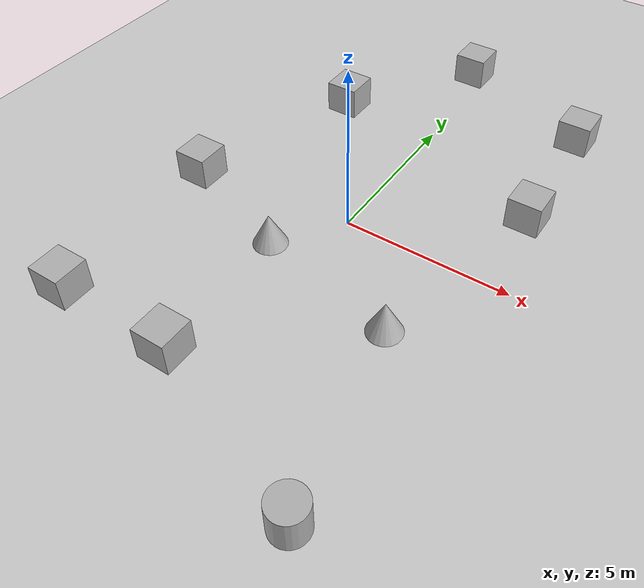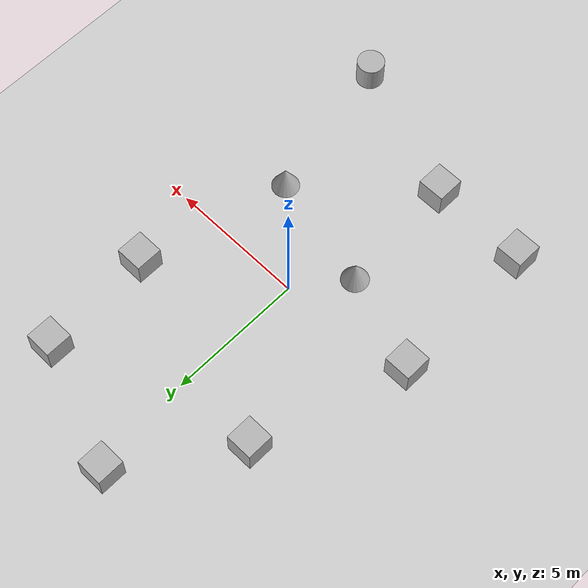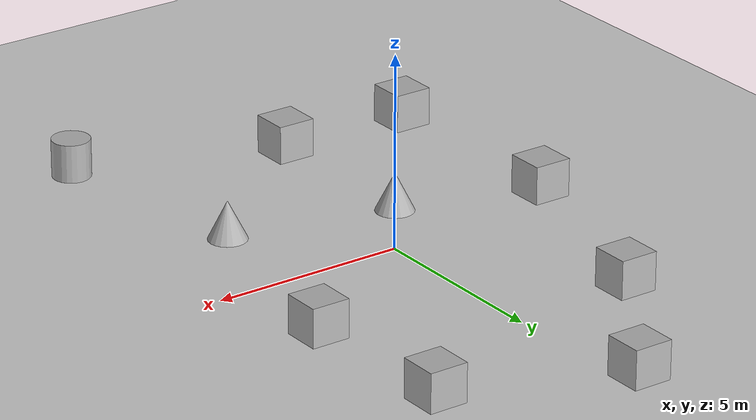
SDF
<sdf version="1.10">
 <world name="empty_warehouse">
  <scene>
   <grid>false</grid>
   <ambient>0.400000006 0.400000006 0.400000006 1</ambient>
   <background>0.699999988 0.699999988 0.699999988 1</background>
   <shadows>true</shadows>
  </scene>
  <physics name="1ms" type="ignored">
   <max_step_size>0.002</max_step_size>
   <real_time_factor>1</real_time_factor>
   <real_time_update_rate>1000</real_time_update_rate>
  </physics>
  <plugin name="ignition::gazebo::systems::Physics" filename="ignition-gazebo-physics-system"/>
  <plugin name="ignition::gazebo::systems::UserCommands" filename="ignition-gazebo-user-commands-system"/>
  <plugin name="ignition::gazebo::systems::SceneBroadcaster" filename="ignition-gazebo-scene-broadcaster-system"/>
  <gravity>0 0 -9.8000000000000007</gravity>
  <magnetic_field>5.5644999999999998e-06 2.2875799999999999e-05 -4.2388400000000002e-05</magnetic_field>
  <atmosphere type="adiabatic"/>
  <model name="ground_plane">
   <static>true</static>
   <link name="link">
    <collision name="collision">
     <geometry><plane><normal>0 0 1</normal><size>100 100</size></plane></geometry>
    </collision>
    <visual name="visual">
     <geometry><plane><normal>0 0 1</normal><size>100 100</size></plane></geometry>
     <material>
      <ambient>0.800000012 0.800000012 0.800000012 1</ambient>
      <diffuse>0.800000012 0.800000012 0.800000012 1</diffuse>
      <specular>0.800000012 0.800000012 0.800000012 1</specular>
     </material>
    </visual>
    <inertial>
     <mass>1</mass>
     <inertia><ixx>1</ixx><ixy>0</ixy><ixz>0</ixz><iyy>1</iyy><iyz>0</iyz><izz>1</izz></inertia>
    </inertial>
   </link>
  </model>
  <model name="box">
   <pose>-0.41791252507652388 8.7567817257969658 0.5 0 0 0</pose>
   <link name="box_link">
    <inertial>
     <inertia><ixx>0.16666</ixx><ixy>0</ixy><ixz>0</ixz><iyy>0.16666</iyy><iyz>0</iyz><izz>0.16666</izz></inertia>
     <mass>1</mass>
    </inertial>
    <collision name="box_collision"><geometry><box><size>1 1 1</size></box></geometry></collision>
    <visual name="box_visual">
     <geometry><box><size>1 1 1</size></box></geometry>
     <material>
      <ambient>0.300000012 0.300000012 0.300000012 1</ambient>
      <diffuse>0.699999988 0.699999988 0.699999988 1</diffuse>
      <specular>1 1 1 1</specular>
     </material>
    </visual>
   </link>
   <static>false</static>
  </model>
  <model name="box_0">
   <pose>-3.1274981465458733 4.9010268482580912 0.5 0 0 0</pose>
   <link name="box_link">
    <inertial>
     <inertia><ixx>0.16666</ixx><ixy>0</ixy><ixz>0</ixz><iyy>0.16666</iyy><iyz>0</iyz><izz>0.16666</izz></inertia>
     <mass>1</mass>
    </inertial>
    <collision name="box_collision"><geometry><box><size>1 1 1</size></box></geometry></collision>
    <visual name="box_visual">
     <geometry><box><size>1 1 1</size></box></geometry>
     <material>
      <ambient>0.300000012 0.300000012 0.300000012 1</ambient>
      <diffuse>0.699999988 0.699999988 0.699999988 1</diffuse>
      <specular>1 1 1 1</specular>
     </material>
    </visual>
   </link>
   <static>false</static>
  </model>
  <model name="box_1">
   <pose>4.2105930401578942 2.8484037267904672 0.5 0 0 0</pose>
   <link name="box_link">
    <inertial>
     <inertia><ixx>0.16666</ixx><ixy>0</ixy><ixz>0</ixz><iyy>0.16666</iyy><iyz>0</iyz><izz>0.16666</izz></inertia>
     <mass>1</mass>
    </inertial>
    <collision name="box_collision"><geometry><box><size>1 1 1</size></box></geometry></collision>
    <visual name="box_visual">
     <geometry><box><size>1 1 1</size></box></geometry>
     <material>
      <ambient>0.300000012 0.300000012 0.300000012 1</ambient>
      <diffuse>0.699999988 0.699999988 0.699999988 1</diffuse>
      <specular>1 1 1 1</specular>
     </material>
    </visual>
   </link>
   <static>false</static>
  </model>
  <model name="box_2">
   <pose>3.9888741993950543 7.0383303578553083 0.5 0 0 0</pose>
   <link name="box_link">
    <inertial>
     <inertia><ixx>0.16666</ixx><ixy>0</ixy><ixz>0</ixz><iyy>0.16666</iyy><iyz>0</iyz><izz>0.16666</izz></inertia>
     <mass>1</mass>
    </inertial>
    <collision name="box_collision"><geometry><box><size>1 1 1</size></box></geometry></collision>
    <visual name="box_visual">
     <geometry><box><size>1 1 1</size></box></geometry>
     <material>
      <ambient>0.300000012 0.300000012 0.300000012 1</ambient>
      <diffuse>0.699999988 0.699999988 0.699999988 1</diffuse>
      <specular>1 1 1 1</specular>
     </material>
    </visual>
   </link>
   <static>false</static>
  </model>
  <model name="box_3">
   <pose>-4.8407414841106506 -0.55806890922338948 0.5 0 0 0</pose>
   <link name="box_link">
    <inertial>
     <inertia><ixx>0.16666</ixx><ixy>0</ixy><ixz>0</ixz><iyy>0.16666</iyy><iyz>0</iyz><izz>0.16666</izz></inertia>
     <mass>1</mass>
    </inertial>
    <collision name="box_collision"><geometry><box><size>1 1 1</size></box></geometry></collision>
    <visual name="box_visual">
     <geometry><box><size>1 1 1</size></box></geometry>
     <material>
      <ambient>0.300000012 0.300000012 0.300000012 1</ambient>
      <diffuse>0.699999988 0.699999988 0.699999988 1</diffuse>
      <specular>1 1 1 1</specular>
     </material>
    </visual>
   </link>
   <static>false</static>
  </model>
  <model name="box_4">
   <pose>-1.1595291531817891 -6.2327570192769457 0.5 0 0 0</pose>
   <link name="box_link">
    <inertial>
     <inertia><ixx>0.16666</ixx><ixy>0</ixy><ixz>0</ixz><iyy>0.16666</iyy><iyz>0</iyz><izz>0.16666</izz></inertia>
     <mass>1</mass>
    </inertial>
    <collision name="box_collision"><geometry><box><size>1 1 1</size></box></geometry></collision>
    <visual name="box_visual">
     <geometry><box><size>1 1 1</size></box></geometry>
     <material>
      <ambient>0.300000012 0.300000012 0.300000012 1</ambient>
      <diffuse>0.699999988 0.699999988 0.699999988 1</diffuse>
      <specular>1 1 1 1</specular>
     </material>
    </visual>
   </link>
   <static>false</static>
  </model>
  <model name="cone">
   <pose>-1.3485919842180292 -1.8324545842017219 0.5 0 0 0</pose>
   <link name="cone_link">
    <inertial>
     <inertia>
      <ixx>0.074999999999999997</ixx>
      <ixy>0</ixy>
      <ixz>0</ixz>
      <iyy>0.074999999999999997</iyy>
      <iyz>0</iyz>
      <izz>0.074999999999999997</izz>
     </inertia>
     <mass>1</mass>
    </inertial>
    <collision name="cone_collision">
     <geometry><cone><radius>0.5</radius><length>1</length></cone></geometry>
    </collision>
    <visual name="cone_visual">
     <geometry><cone><radius>0.5</radius><length>1</length></cone></geometry>
     <material>
      <ambient>0.300000012 0.300000012 0.300000012 1</ambient>
      <diffuse>0.699999988 0.699999988 0.699999988 1</diffuse>
      <specular>1 1 1 1</specular>
     </material>
    </visual>
   </link>
   <static>false</static>
  </model>
  <model name="cone_0">
   <pose>2.912861511510366 -2.79644826478357 0.5 0 0 0</pose>
   <link name="cone_link">
    <inertial>
     <inertia>
      <ixx>0.074999999999999997</ixx>
      <ixy>0</ixy>
      <ixz>0</ixz>
      <iyy>0.074999999999999997</iyy>
      <iyz>0</iyz>
      <izz>0.074999999999999997</izz>
     </inertia>
     <mass>1</mass>
    </inertial>
    <collision name="cone_collision">
     <geometry><cone><radius>0.5</radius><length>1</length></cone></geometry>
    </collision>
    <visual name="cone_visual">
     <geometry><cone><radius>0.5</radius><length>1</length></cone></geometry>
     <material>
      <ambient>0.300000012 0.300000012 0.300000012 1</ambient>
      <diffuse>0.699999988 0.699999988 0.699999988 1</diffuse>
      <specular>1 1 1 1</specular>
     </material>
    </visual>
   </link>
   <static>false</static>
  </model>
  <model name="cylinder">
   <pose>3.9470569030152625 -8.1898669586715833 0.5 0 0 0</pose>
   <link name="cylinder_link">
    <inertial>
     <inertia>
      <ixx>0.14580000000000001</ixx>
      <ixy>0</ixy>
      <ixz>0</ixz>
      <iyy>0.14580000000000001</iyy>
      <iyz>0</iyz>
      <izz>0.125</izz>
     </inertia>
     <mass>1</mass>
    </inertial>
    <collision name="cylinder_collision">
     <geometry><cylinder><radius>0.5</radius><length>1</length></cylinder></geometry>
    </collision>
    <visual name="cylinder_visual">
     <geometry><cylinder><radius>0.5</radius><length>1</length></cylinder></geometry>
     <material>
      <ambient>0.300000012 0.300000012 0.300000012 1</ambient>
      <diffuse>0.699999988 0.699999988 0.699999988 1</diffuse>
      <specular>1 1 1 1</specular>
     </material>
    </visual>
   </link>
   <static>false</static>
  </model>
  <model name="box_5">
   <pose>-4.7247421549941357 -6.1748253302643725 0.5 0 0 0</pose>
   <link name="box_link">
    <inertial>
     <inertia><ixx>0.16666</ixx><ixy>0</ixy><ixz>0</ixz><iyy>0.16666</iyy><iyz>0</iyz><izz>0.16666</izz></inertia>
     <mass>1</mass>
    </inertial>
    <collision name="box_collision"><geometry><box><size>1 1 1</size></box></geometry></collision>
    <visual name="box_visual">
     <geometry><box><size>1 1 1</size></box></geometry>
     <material>
      <ambient>0.300000012 0.300000012 0.300000012 1</ambient>
      <diffuse>0.699999988 0.699999988 0.699999988 1</diffuse>
      <specular>1 1 1 1</specular>
     </material>
    </visual>
   </link>
   <static>false</static>
  </model>
  <light name="sun" type="directional">
   <pose>0 0 10 0 0 0</pose>
   <intensity>1</intensity>
   <direction>-0.5 0.10000000000000001 -0.90000000000000002</direction>
   <diffuse>0.800000012 0.800000012 0.800000012 1</diffuse>
   <specular>0.200000003 0.200000003 0.200000003 1</specular>
   <attenuation>
    <range>1000</range>
    <linear>0.01</linear>
    <constant>0.90000000000000002</constant>
    <quadratic>0.001</quadratic>
   </attenuation>
   <spot><inner_angle>0</inner_angle><outer_angle>0</outer_angle><falloff>0</falloff></spot>
  </light>
 </world>
</sdf>
